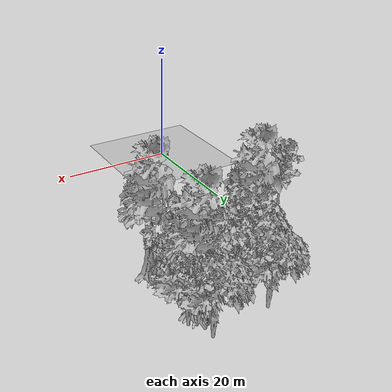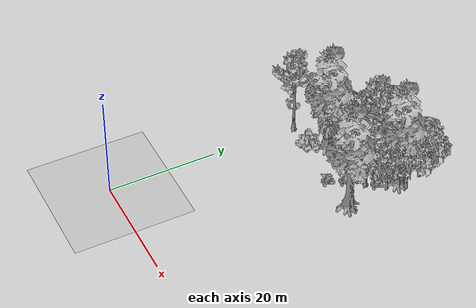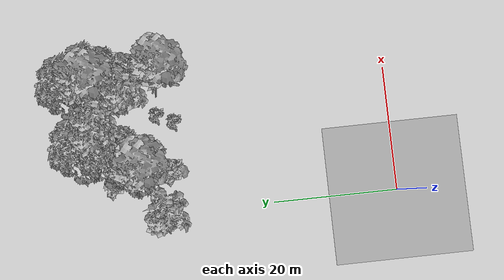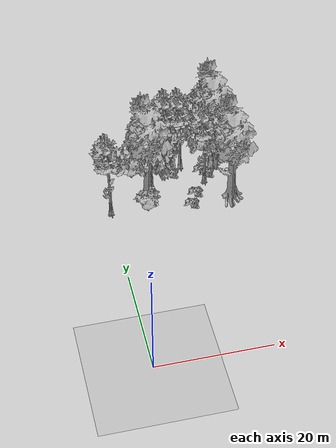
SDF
<sdf version="1.7">
 <world name="default">
  <model name="ground_plane">
   <static>1</static>
   <link name="link">
    <collision name="collision">
     <geometry><plane><normal>0 0 1</normal><size>100 100</size></plane></geometry>
     <surface><contact><ode><min_depth>0.01</min_depth><max_vel>0</max_vel></ode></contact></surface>
    </collision>
    <visual name="grass">
     <cast_shadows>0</cast_shadows>
     <geometry>
      <mesh>
       <scale>0.41000000000000003 0.41000000000000003 0.1</scale>
       <uri>file://grass_plane/meshes/grass_plane.dae</uri>
      </mesh>
     </geometry>
    </visual>
   </link>
  </model>
  <model name="Tree 2">
   <static>1</static>
   <pose>20.87272012074979 49.653918708185955 0 1.57079 -0 0</pose>
   <link name="link">
    <collision name="collision">
     <geometry><mesh><scale>5 5 5</scale><uri>model://tree_2/meshes/tree_2.obj</uri></mesh></geometry>
    </collision>
    <visual name="visual">
     <geometry><mesh><scale>5 5 5</scale><uri>model://tree_2/meshes/tree_2.obj</uri></mesh></geometry>
    </visual>
   </link>
  </model>
  <model name="Tree 232">
   <static>1</static>
   <pose>21.002469410184872 45.40003759109847 0 1.57079 -0 0</pose>
   <link name="link">
    <collision name="collision">
     <geometry><mesh><scale>5 5 5</scale><uri>model://tree_4/meshes/tree_4.obj</uri></mesh></geometry>
    </collision>
    <visual name="visual">
     <geometry><mesh><scale>5 5 5</scale><uri>model://tree_4/meshes/tree_4.obj</uri></mesh></geometry>
    </visual>
   </link>
  </model>
  <model name="Tree 237">
   <static>1</static>
   <pose>14.895947857452704 45.16349501878419 0 1.57079 -0 0</pose>
   <link name="link">
    <collision name="collision">
     <geometry><mesh><scale>5 5 5</scale><uri>model://tree_9/meshes/tree_9.obj</uri></mesh></geometry>
    </collision>
    <visual name="visual">
     <geometry><mesh><scale>5 5 5</scale><uri>model://tree_9/meshes/tree_9.obj</uri></mesh></geometry>
    </visual>
   </link>
  </model>
  <model name="Tree 248">
   <static>1</static>
   <pose>18.356158959743198 40.42447831138935 0 1.57079 -0 0</pose>
   <link name="link">
    <collision name="collision">
     <geometry><mesh><scale>5 5 5</scale><uri>model://tree_9/meshes/tree_9.obj</uri></mesh></geometry>
    </collision>
    <visual name="visual">
     <geometry><mesh><scale>5 5 5</scale><uri>model://tree_9/meshes/tree_9.obj</uri></mesh></geometry>
    </visual>
   </link>
  </model>
  <model name="Tree 256">
   <static>1</static>
   <pose>22.379078573656116 46.17954341840084 0 1.57079 -0 0</pose>
   <link name="link">
    <collision name="collision">
     <geometry><mesh><scale>5 5 5</scale><uri>model://tree_2/meshes/tree_2.obj</uri></mesh></geometry>
    </collision>
    <visual name="visual">
     <geometry><mesh><scale>5 5 5</scale><uri>model://tree_2/meshes/tree_2.obj</uri></mesh></geometry>
    </visual>
   </link>
  </model>
  <model name="Tree 278">
   <static>1</static>
   <pose>20.952890141610297 46.465327054690135 0 1.57079 -0 0</pose>
   <link name="link">
    <collision name="collision">
     <geometry><mesh><scale>5 5 5</scale><uri>model://tree_2/meshes/tree_2.obj</uri></mesh></geometry>
    </collision>
    <visual name="visual">
     <geometry><mesh><scale>5 5 5</scale><uri>model://tree_2/meshes/tree_2.obj</uri></mesh></geometry>
    </visual>
   </link>
  </model>
  <model name="Tree 293">
   <static>1</static>
   <pose>8.39848604532395 40.62874617414907 0 1.57079 -0 0</pose>
   <link name="link">
    <collision name="collision">
     <geometry><mesh><scale>5 5 5</scale><uri>model://tree_2/meshes/tree_2.obj</uri></mesh></geometry>
    </collision>
    <visual name="visual">
     <geometry><mesh><scale>5 5 5</scale><uri>model://tree_2/meshes/tree_2.obj</uri></mesh></geometry>
    </visual>
   </link>
  </model>
  <model name="Tree 313">
   <static>1</static>
   <pose>11.213224668453456 48.57307525206339 0 1.57079 -0 0</pose>
   <link name="link">
    <collision name="collision">
     <geometry><mesh><scale>5 5 5</scale><uri>model://tree_2/meshes/tree_2.obj</uri></mesh></geometry>
    </collision>
    <visual name="visual">
     <geometry><mesh><scale>5 5 5</scale><uri>model://tree_2/meshes/tree_2.obj</uri></mesh></geometry>
    </visual>
   </link>
  </model>
  <model name="Tree 316">
   <static>1</static>
   <pose>21.130370482672305 42.97857349164029 0 1.57079 -0 0</pose>
   <link name="link">
    <collision name="collision">
     <geometry><mesh><scale>5 5 5</scale><uri>model://tree_2/meshes/tree_2.obj</uri></mesh></geometry>
    </collision>
    <visual name="visual">
     <geometry><mesh><scale>5 5 5</scale><uri>model://tree_2/meshes/tree_2.obj</uri></mesh></geometry>
    </visual>
   </link>
  </model>
  <model name="Tree 351">
   <static>1</static>
   <pose>20.12689506008094 46.70370734955297 0 1.57079 -0 0</pose>
   <link name="link">
    <collision name="collision">
     <geometry><mesh><scale>5 5 5</scale><uri>model://tree_9/meshes/tree_9.obj</uri></mesh></geometry>
    </collision>
    <visual name="visual">
     <geometry><mesh><scale>5 5 5</scale><uri>model://tree_9/meshes/tree_9.obj</uri></mesh></geometry>
    </visual>
   </link>
  </model>
  <model name="Tree 355">
   <static>1</static>
   <pose>10.052322185288048 44.16530480788485 0 1.57079 -0 0</pose>
   <link name="link">
    <collision name="collision">
     <geometry><mesh><scale>5 5 5</scale><uri>model://tree_2/meshes/tree_2.obj</uri></mesh></geometry>
    </collision>
    <visual name="visual">
     <geometry><mesh><scale>5 5 5</scale><uri>model://tree_2/meshes/tree_2.obj</uri></mesh></geometry>
    </visual>
   </link>
  </model>
  <model name="Tree 357">
   <static>1</static>
   <pose>22.041293349651625 35.02563808948311 0 1.57079 -0 0</pose>
   <link name="link">
    <collision name="collision">
     <geometry><mesh><scale>5 5 5</scale><uri>model://tree_4/meshes/tree_4.obj</uri></mesh></geometry>
    </collision>
    <visual name="visual">
     <geometry><mesh><scale>5 5 5</scale><uri>model://tree_4/meshes/tree_4.obj</uri></mesh></geometry>
    </visual>
   </link>
  </model>
  <model name="Tree 408">
   <static>1</static>
   <pose>0.09977475486525123 35.973042317943595 0 1.57079 -0 0</pose>
   <link name="link">
    <collision name="collision">
     <geometry><mesh><scale>5 5 5</scale><uri>model://tree_9/meshes/tree_9.obj</uri></mesh></geometry>
    </collision>
    <visual name="visual">
     <geometry><mesh><scale>5 5 5</scale><uri>model://tree_9/meshes/tree_9.obj</uri></mesh></geometry>
    </visual>
   </link>
  </model>
  <model name="Tree 446">
   <static>1</static>
   <pose>7.543250950123976 38.87035778514955 0 1.57079 -0 0</pose>
   <link name="link">
    <collision name="collision">
     <geometry><mesh><scale>5 5 5</scale><uri>model://tree_4/meshes/tree_4.obj</uri></mesh></geometry>
    </collision>
    <visual name="visual">
     <geometry><mesh><scale>5 5 5</scale><uri>model://tree_4/meshes/tree_4.obj</uri></mesh></geometry>
    </visual>
   </link>
  </model>
  <model name="Tree 491">
   <static>1</static>
   <pose>12.51675896708138 45.50610542256213 0 1.57079 -0 0</pose>
   <link name="link">
    <collision name="collision">
     <geometry><mesh><scale>5 5 5</scale><uri>model://tree_9/meshes/tree_9.obj</uri></mesh></geometry>
    </collision>
    <visual name="visual">
     <geometry><mesh><scale>5 5 5</scale><uri>model://tree_9/meshes/tree_9.obj</uri></mesh></geometry>
    </visual>
   </link>
  </model>
  <model name="Bush 32">
   <static>1</static>
   <pose>19.26984694744725 42.124801675310664 0 1.57079 -0 0</pose>
   <link name="link">
    <collision name="collision">
     <geometry><mesh><scale>2 2 2</scale><uri>model://bush_2/meshes/bush_2.obj</uri></mesh></geometry>
    </collision>
    <visual name="visual">
     <geometry><mesh><scale>5 5 5</scale><uri>model://bush_2/meshes/bush_2.obj</uri></mesh></geometry>
    </visual>
   </link>
  </model>
  <model name="Bush 49">
   <static>1</static>
   <pose>14.724026133692895 34.83408498543338 0 1.57079 -0 0</pose>
   <link name="link">
    <collision name="collision">
     <geometry><mesh><scale>2 2 2</scale><uri>model://bush_2/meshes/bush_2.obj</uri></mesh></geometry>
    </collision>
    <visual name="visual">
     <geometry><mesh><scale>5 5 5</scale><uri>model://bush_2/meshes/bush_2.obj</uri></mesh></geometry>
    </visual>
   </link>
  </model>
  <model name="Bush 50">
   <static>1</static>
   <pose>16.046400244702724 37.571576323917625 0 1.57079 -0 0</pose>
   <link name="link">
    <collision name="collision">
     <geometry><mesh><scale>2 2 2</scale><uri>model://bush_2/meshes/bush_2.obj</uri></mesh></geometry>
    </collision>
    <visual name="visual">
     <geometry><mesh><scale>5 5 5</scale><uri>model://bush_2/meshes/bush_2.obj</uri></mesh></geometry>
    </visual>
   </link>
  </model>
  <model name="Bush 65">
   <static>1</static>
   <pose>6.690813237677958 35.0415813022457 0 1.57079 -0 0</pose>
   <link name="link">
    <collision name="collision">
     <geometry><mesh><scale>2 2 2</scale><uri>model://bush_1/meshes/bush_1.obj</uri></mesh></geometry>
    </collision>
    <visual name="visual">
     <geometry><mesh><scale>5 5 5</scale><uri>model://bush_1/meshes/bush_1.obj</uri></mesh></geometry>
    </visual>
   </link>
  </model>
  <model name="Bush 85">
   <static>1</static>
   <pose>18.34385554453884 43.22040473345558 0 1.57079 -0 0</pose>
   <link name="link">
    <collision name="collision">
     <geometry><mesh><scale>2 2 2</scale><uri>model://bush_2/meshes/bush_2.obj</uri></mesh></geometry>
    </collision>
    <visual name="visual">
     <geometry><mesh><scale>5 5 5</scale><uri>model://bush_2/meshes/bush_2.obj</uri></mesh></geometry>
    </visual>
   </link>
  </model>
  <model name="Bush 109">
   <static>1</static>
   <pose>12.825408024827333 43.393102313278476 0 1.57079 -0 0</pose>
   <link name="link">
    <collision name="collision">
     <geometry><mesh><scale>2 2 2</scale><uri>model://bush_2/meshes/bush_2.obj</uri></mesh></geometry>
    </collision>
    <visual name="visual">
     <geometry><mesh><scale>5 5 5</scale><uri>model://bush_2/meshes/bush_2.obj</uri></mesh></geometry>
    </visual>
   </link>
  </model>
  <model name="Bush 117">
   <static>1</static>
   <pose>5.5002022699708775 44.288085925394654 0 1.57079 -0 0</pose>
   <link name="link">
    <collision name="collision">
     <geometry><mesh><scale>2 2 2</scale><uri>model://bush_1/meshes/bush_1.obj</uri></mesh></geometry>
    </collision>
    <visual name="visual">
     <geometry><mesh><scale>5 5 5</scale><uri>model://bush_1/meshes/bush_1.obj</uri></mesh></geometry>
    </visual>
   </link>
  </model>
 </world>
</sdf>
